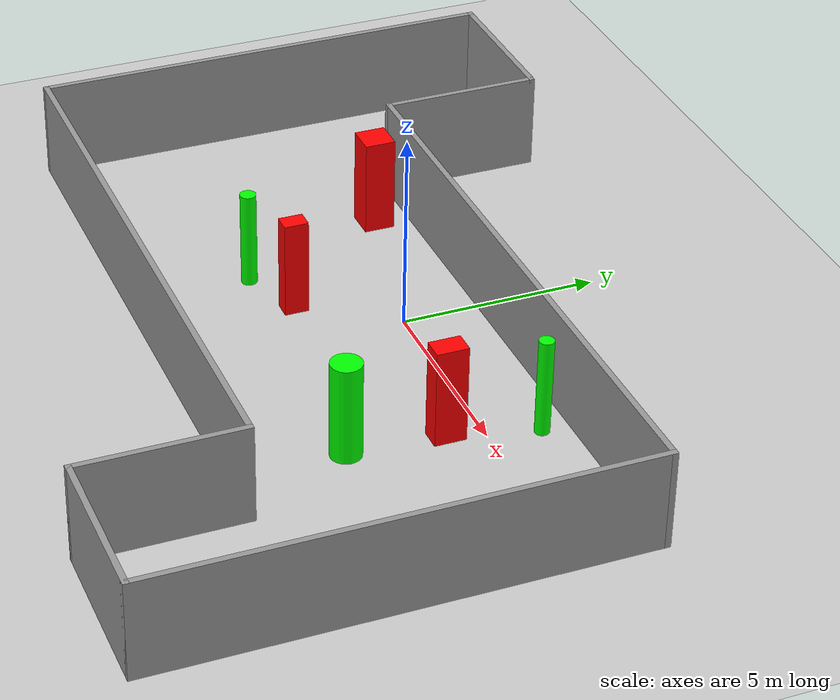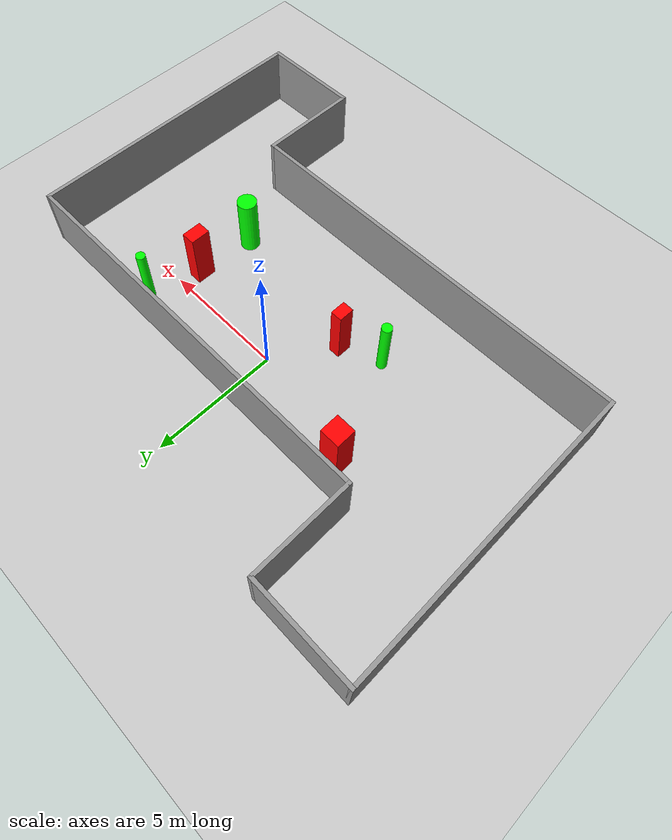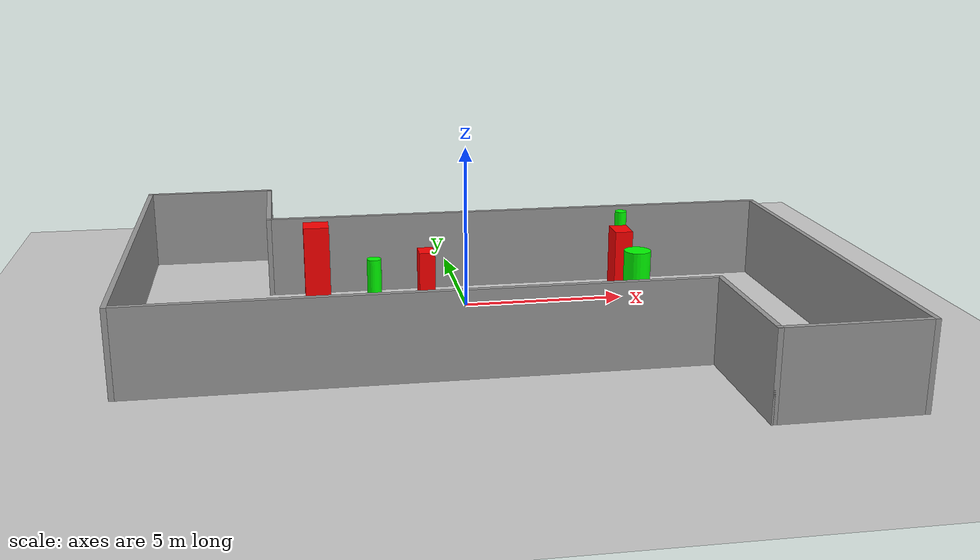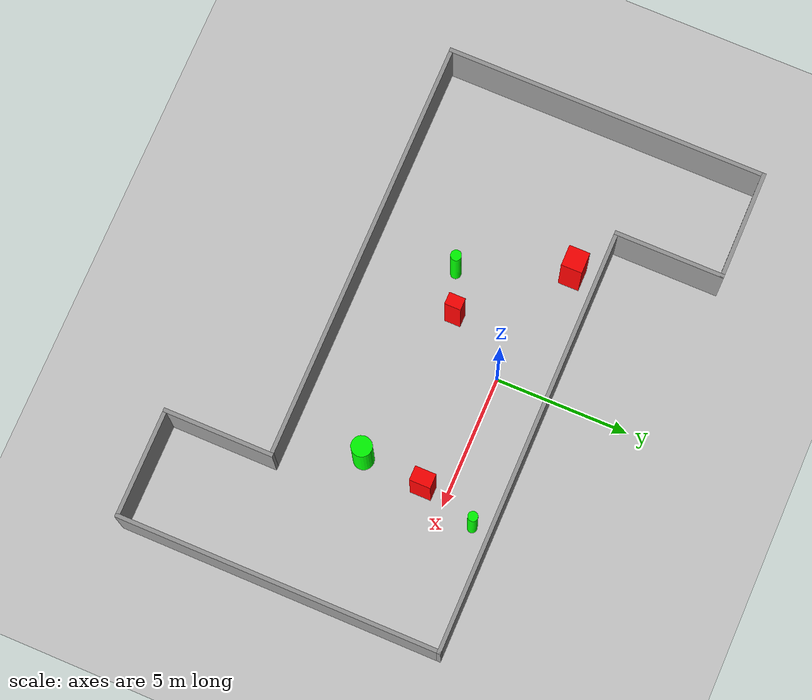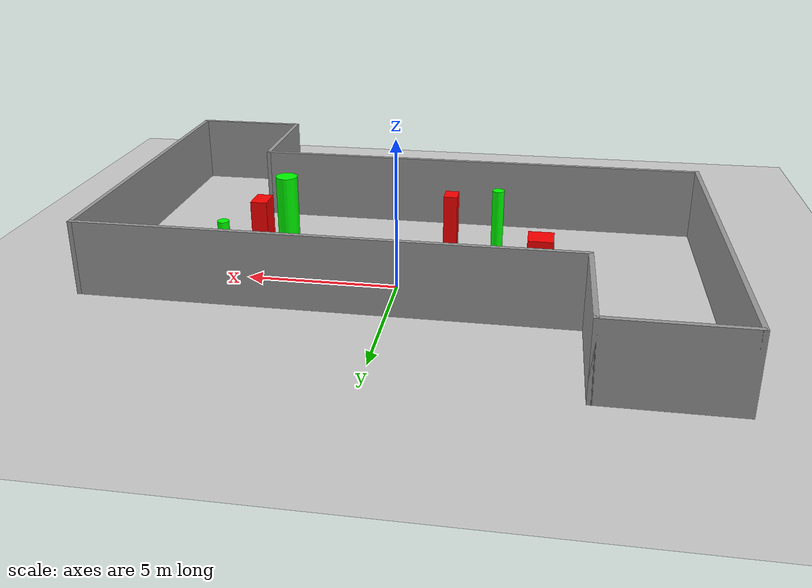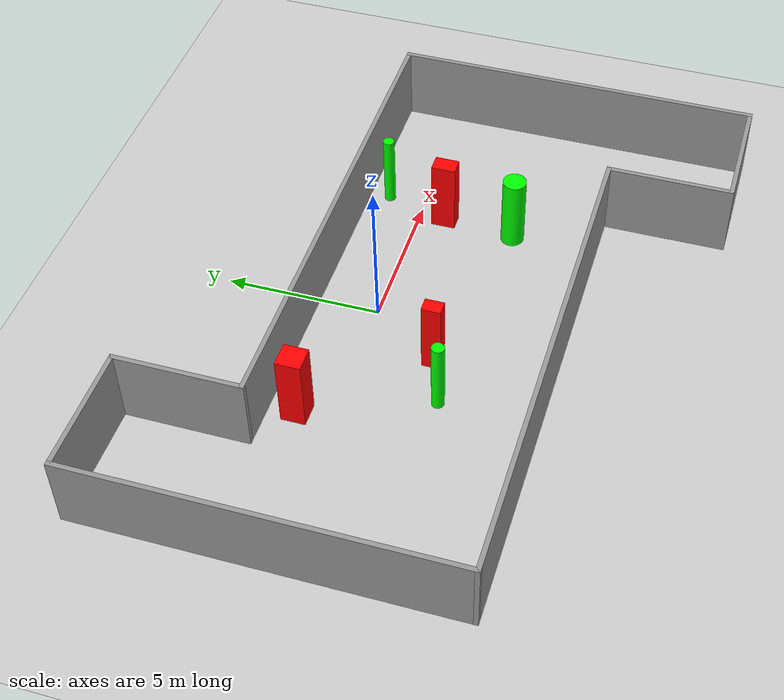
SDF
<sdf version="1.7">
 <world name="default">
  <light name="sun" type="directional">
   <pose>0 0 10 0 -0 0</pose>
   <diffuse>0.8 0.8 0.8 1</diffuse>
   <specular>0.2 0.2 0.2 1</specular>
   <attenuation>
    <range>1000</range>
    <constant>0.9</constant>
    <linear>0.01</linear>
    <quadratic>0.001</quadratic>
   </attenuation>
   <direction>-0.5 0.1 -0.9</direction>
   <spot><inner_angle>0</inner_angle><outer_angle>0</outer_angle><falloff>0</falloff></spot>
  </light>
  <model name="ground_plane">
   <static>1</static>
   <link name="link">
    <collision name="collision">
     <geometry><plane><normal>0 0 1</normal><size>100 100</size></plane></geometry>
     <surface>
      <contact><collide_bitmask>65535</collide_bitmask></contact>
      <friction><ode><mu>100</mu><mu2>50</mu2></ode></friction>
     </surface>
    </collision>
    <visual name="visual">
     <cast_shadows>0</cast_shadows>
     <geometry><plane><normal>0 0 1</normal><size>100 100</size></plane></geometry>
     <material>
      <script><uri>file://media/materials/scripts/gazebo.material</uri><name>Gazebo/Grey</name></script>
     </material>
    </visual>
   </link>
  </model>
  <gravity>0 0 -9.8</gravity>
  <magnetic_field>6e-06 2.3e-05 -4.2e-05</magnetic_field>
  <atmosphere type="adiabatic"/>
  <physics type="ode">
   <max_step_size>0.001</max_step_size>
   <real_time_factor>1</real_time_factor>
   <real_time_update_rate>1000</real_time_update_rate>
  </physics>
  <scene><ambient>0.4 0.4 0.4 1</ambient><background>0.7 0.7 0.7 1</background><shadows>1</shadows></scene>
  <spherical_coordinates>
   <surface_model>EARTH_WGS84</surface_model>
   <latitude_deg>0</latitude_deg>
   <longitude_deg>0</longitude_deg>
   <elevation>0</elevation>
   <heading_deg>0</heading_deg>
  </spherical_coordinates>
  <model name="my_base_walls">
   <link name="Wall_13">
    <collision name="Wall_13_Collision">
     <geometry><box><size>12.15 0.15 2.5</size></box></geometry>
     <pose>0 0 1.25 0 -0 0</pose>
    </collision>
    <visual name="Wall_13_Visual">
     <pose>0 0 1.25 0 -0 0</pose>
     <geometry><box><size>12.15 0.15 2.5</size></box></geometry>
     <material>
      <script><uri>file://media/materials/scripts/gazebo.material</uri><name>Gazebo/Grey</name></script>
      <ambient>1 1 1 1</ambient>
     </material>
     <meta><layer>0</layer></meta>
    </visual>
    <pose>10 -2 0 0 -0 1.5708</pose>
   </link>
   <link name="Wall_15">
    <collision name="Wall_15_Collision">
     <geometry><box><size>16.15 0.15 2.5</size></box></geometry>
     <pose>0 0 1.25 0 -0 0</pose>
    </collision>
    <visual name="Wall_15_Visual">
     <pose>0 0 1.25 0 -0 0</pose>
     <geometry><box><size>16.15 0.15 2.5</size></box></geometry>
     <material>
      <script><uri>file://media/materials/scripts/gazebo.material</uri><name>Gazebo/Grey</name></script>
      <ambient>1 1 1 1</ambient>
     </material>
     <meta><layer>0</layer></meta>
    </visual>
    <pose>2 4 0 0 -0 3.14159</pose>
   </link>
   <link name="Wall_17">
    <collision name="Wall_17_Collision">
     <geometry><box><size>4.15 0.15 2.5</size></box></geometry>
     <pose>0 0 1.25 0 -0 0</pose>
    </collision>
    <visual name="Wall_17_Visual">
     <pose>0 0 1.25 0 -0 0</pose>
     <geometry><box><size>4.15 0.15 2.5</size></box></geometry>
     <material>
      <script><uri>file://media/materials/scripts/gazebo.material</uri><name>Gazebo/Grey</name></script>
      <ambient>1 1 1 1</ambient>
     </material>
     <meta><layer>0</layer></meta>
    </visual>
    <pose>6 -6 0 0 -0 -1.5708</pose>
   </link>
   <link name="Wall_19">
    <collision name="Wall_19_Collision">
     <geometry><box><size>12.15 0.15 2.5</size></box></geometry>
     <pose>0 0 1.25 0 -0 0</pose>
    </collision>
    <visual name="Wall_19_Visual">
     <pose>0 0 1.25 0 -0 0</pose>
     <geometry><box><size>12.15 0.15 2.5</size></box></geometry>
     <material>
      <script><uri>file://media/materials/scripts/gazebo.material</uri><name>Gazebo/Grey</name></script>
      <ambient>1 1 1 1</ambient>
     </material>
     <meta><layer>0</layer></meta>
    </visual>
    <pose>-10 2 0 0 -0 1.5708</pose>
   </link>
   <link name="Wall_21">
    <collision name="Wall_21_Collision">
     <geometry><box><size>4.15 0.15 2.5</size></box></geometry>
     <pose>0 0 1.25 0 -0 0</pose>
    </collision>
    <visual name="Wall_21_Visual">
     <pose>0 0 1.25 0 -0 0</pose>
     <geometry><box><size>4.15 0.15 2.5</size></box></geometry>
     <material>
      <script><uri>file://media/materials/scripts/gazebo.material</uri><name>Gazebo/Grey</name></script>
      <ambient>1 1 1 1</ambient>
     </material>
     <meta><layer>0</layer></meta>
    </visual>
    <pose>-8 8 0 0 -0 0</pose>
   </link>
   <link name="Wall_23">
    <collision name="Wall_23_Collision">
     <geometry><box><size>4.15 0.15 2.5</size></box></geometry>
     <pose>0 0 1.25 0 -0 0</pose>
    </collision>
    <visual name="Wall_23_Visual">
     <pose>0 0 1.25 0 -0 0</pose>
     <geometry><box><size>4.15 0.15 2.5</size></box></geometry>
     <material>
      <script><uri>file://media/materials/scripts/gazebo.material</uri><name>Gazebo/Grey</name></script>
      <ambient>1 1 1 1</ambient>
     </material>
     <meta><layer>0</layer></meta>
    </visual>
    <pose>-6 6 0 0 -0 -1.5708</pose>
   </link>
   <link name="Wall_25">
    <collision name="Wall_25_Collision">
     <geometry><box><size>4.15 0.15 2.5</size></box></geometry>
     <pose>0 0 1.25 0 -0 0</pose>
    </collision>
    <visual name="Wall_25_Visual">
     <pose>0 0 1.25 0 -0 0</pose>
     <geometry><box><size>4.15 0.15 2.5</size></box></geometry>
     <material>
      <script><uri>file://media/materials/scripts/gazebo.material</uri><name>Gazebo/Grey</name></script>
      <ambient>1 1 1 1</ambient>
     </material>
     <meta><layer>0</layer></meta>
    </visual>
    <pose>8 -8 0 0 -0 0</pose>
   </link>
   <link name="Wall_9">
    <collision name="Wall_9_Collision">
     <geometry><box><size>16.15 0.15 2.5</size></box></geometry>
     <pose>0 0 1.25 0 -0 0</pose>
    </collision>
    <visual name="Wall_9_Visual">
     <pose>0 0 1.25 0 -0 0</pose>
     <geometry><box><size>16.15 0.15 2.5</size></box></geometry>
     <material>
      <script><uri>file://media/materials/scripts/gazebo.material</uri><name>Gazebo/Grey</name></script>
      <ambient>1 1 1 1</ambient>
     </material>
     <meta><layer>0</layer></meta>
    </visual>
    <pose>-2 -4 0 0 -0 3.14159</pose>
   </link>
   <static>1</static>
   <pose>-0 -2 0 0 -0 0</pose>
  </model>
  <model name="cylinder1">
   <static>1</static>
   <link name="link">
    <inertial>
     <mass>1</mass>
     <inertia><ixx>0.5</ixx><ixy>0</ixy><ixz>0</ixz><iyy>0.5</iyy><iyz>0</iyz><izz>1</izz></inertia>
    </inertial>
    <collision name="collision">
     <geometry><cylinder><radius>0.20199655276479236</radius><length>2.5</length></cylinder></geometry>
    </collision>
    <visual name="visual">
     <geometry><cylinder><radius>0.20199655276479236</radius><length>2.5</length></cylinder></geometry>
     <material>
      <ambient>0 1 0 1</ambient>
      <diffuse>0 1 0 1</diffuse>
      <specular>0.1 0.1 0.1 1</specular>
      <emissive>0 0 0 0</emissive>
     </material>
    </visual>
   </link>
   <pose>-3.0464920722435602 -2.8876232720311963 1.25 0 0 0</pose>
  </model>
  <model name="cylinder2">
   <static>1</static>
   <link name="link">
    <inertial>
     <mass>1</mass>
     <inertia><ixx>0.5</ixx><ixy>0</ixy><ixz>0</ixz><iyy>0.5</iyy><iyz>0</iyz><izz>1</izz></inertia>
    </inertial>
    <collision name="collision">
     <geometry><cylinder><radius>0.1845869268246897</radius><length>2.5</length></cylinder></geometry>
    </collision>
    <visual name="visual">
     <geometry><cylinder><radius>0.1845869268246897</radius><length>2.5</length></cylinder></geometry>
     <material>
      <ambient>0 1 0 1</ambient>
      <diffuse>0 1 0 1</diffuse>
      <specular>0.1 0.1 0.1 1</specular>
      <emissive>0 0 0 0</emissive>
     </material>
    </visual>
   </link>
   <pose>5.274330236702262 1.2519479309169466 1.25 0 0 0</pose>
  </model>
  <model name="cylinder3">
   <static>1</static>
   <link name="link">
    <inertial>
     <mass>1</mass>
     <inertia><ixx>0.5</ixx><ixy>0</ixy><ixz>0</ixz><iyy>0.5</iyy><iyz>0</iyz><izz>1</izz></inertia>
    </inertial>
    <collision name="collision">
     <geometry><cylinder><radius>0.3842325718096493</radius><length>2.5</length></cylinder></geometry>
    </collision>
    <visual name="visual">
     <geometry><cylinder><radius>0.3842325718096493</radius><length>2.5</length></cylinder></geometry>
     <material>
      <ambient>0 1 0 1</ambient>
      <diffuse>0 1 0 1</diffuse>
      <specular>0.1 0.1 0.1 1</specular>
      <emissive>0 0 0 0</emissive>
     </material>
    </visual>
   </link>
   <pose>4.513238952697794 -3.2377229042012026 1.25 0 0 0</pose>
  </model>
  <model name="box1">
   <static>1</static>
   <link name="link">
    <inertial>
     <mass>1</mass>
     <inertia><ixx>0.083</ixx><ixy>0</ixy><ixz>0</ixz><iyy>0.083</iyy><iyz>0</iyz><izz>0.083</izz></inertia>
    </inertial>
    <collision name="collision">
     <geometry><box><size>0.5429885334483664 0.7884107715403359 2.5</size></box></geometry>
    </collision>
    <visual name="visual">
     <geometry><box><size>0.5429885334483664 0.7884107715403359 2.5</size></box></geometry>
     <material>
      <ambient>1 0 0 1</ambient>
      <diffuse>1 0 0 1</diffuse>
      <specular>0.1 0.1 0.1 1</specular>
      <emissive>0 0 0 0</emissive>
     </material>
    </visual>
    <sensor name="my_contact" type="contact">
     <contact><collision>box_collision</collision><topic>__default_topic__</topic></contact>
    </sensor>
   </link>
   <pose>4.685217189719145 -0.8688460684584518 1.25 0 0 0</pose>
  </model>
  <model name="box2">
   <static>1</static>
   <link name="link">
    <inertial>
     <mass>1</mass>
     <inertia><ixx>0.083</ixx><ixy>0</ixy><ixz>0</ixz><iyy>0.083</iyy><iyz>0</iyz><izz>0.083</izz></inertia>
    </inertial>
    <collision name="collision">
     <geometry><box><size>0.7837393098096102 0.783413890254006 2.5</size></box></geometry>
    </collision>
    <visual name="visual">
     <geometry><box><size>0.7837393098096102 0.783413890254006 2.5</size></box></geometry>
     <material>
      <ambient>1 0 0 1</ambient>
      <diffuse>1 0 0 1</diffuse>
      <specular>0.1 0.1 0.1 1</specular>
      <emissive>0 0 0 0</emissive>
     </material>
    </visual>
    <sensor name="my_contact" type="contact">
     <contact><collision>box_collision</collision><topic>__default_topic__</topic></contact>
    </sensor>
   </link>
   <pose>-4.55789282889775 1.0342374101957104 1.25 0 0 0</pose>
  </model>
  <model name="box3">
   <static>1</static>
   <link name="link">
    <inertial>
     <mass>1</mass>
     <inertia><ixx>0.083</ixx><ixy>0</ixy><ixz>0</ixz><iyy>0.083</iyy><iyz>0</iyz><izz>0.083</izz></inertia>
    </inertial>
    <collision name="collision">
     <geometry><box><size>0.4548357827403091 0.6115492672675185 2.5</size></box></geometry>
    </collision>
    <visual name="visual">
     <geometry><box><size>0.4548357827403091 0.6115492672675185 2.5</size></box></geometry>
     <material>
      <ambient>1 0 0 1</ambient>
      <diffuse>1 0 0 1</diffuse>
      <specular>0.1 0.1 0.1 1</specular>
      <emissive>0 0 0 0</emissive>
     </material>
    </visual>
    <sensor name="my_contact" type="contact">
     <contact><collision>box_collision</collision><topic>__default_topic__</topic></contact>
    </sensor>
   </link>
   <pose>-1.5033941695945598 -2.2761676335875904 1.25 0 0 0</pose>
  </model>
 </world>
</sdf>
